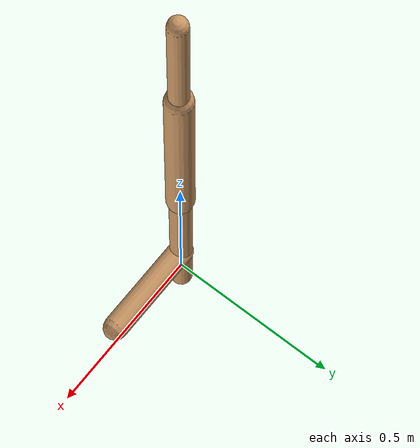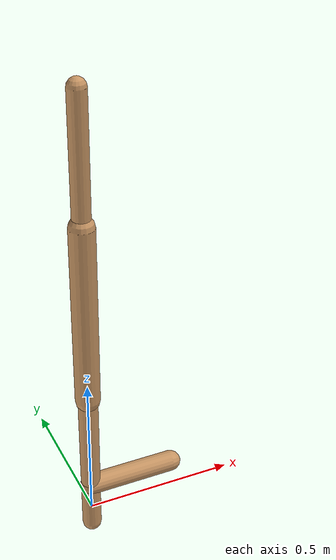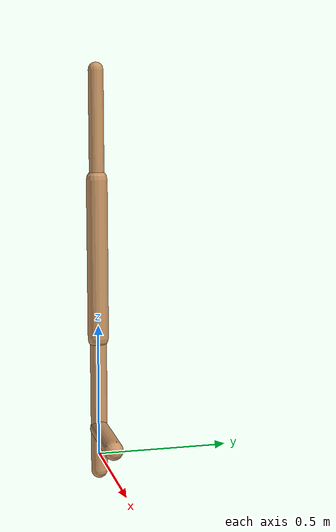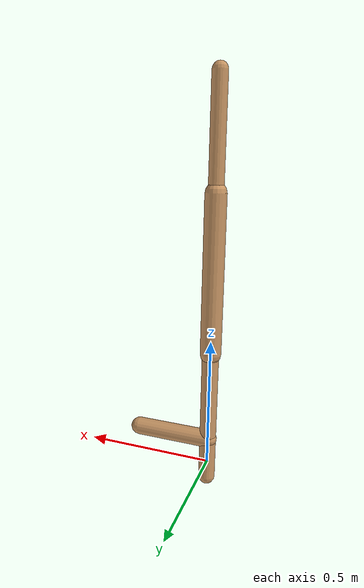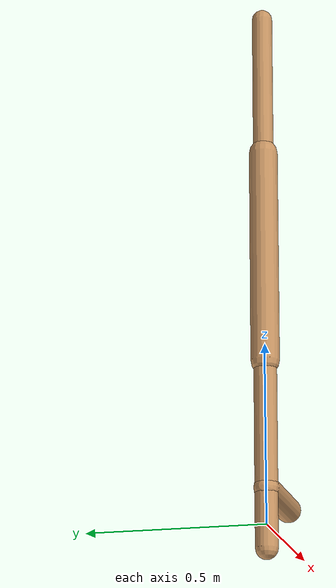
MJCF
<mujoco model="walker2d">
  <compiler angle="degree" coordinate="global" inertiafromgeom="true" />
  <default>
    <joint armature="0.01" damping=".1" limited="true" />
    <geom conaffinity="0" condim="3" contype="1" density="1000" friction="0.8 .1 .1" rgba="0.8 0.6 .4 1" />
  </default>
  <option integrator="RK4" timestep="0.002" />
  <worldbody>

    <body name="torso" pos="0 0 0.3110188992761192">
      <joint armature="0" axis="1 0 0" damping="0" limited="false" name="ignorex" pos="0 0 0" stiffness="0" type="slide" />
      <joint armature="0" axis="0 0 1" damping="0" limited="false" name="ignorez" pos="0 0 0" ref="1.25" stiffness="0" type="slide" />
      <joint armature="0" axis="0 1 0" damping="0" limited="false" name="ignorey" pos="0 0 0" stiffness="0" type="hinge" />
      <geom fromto="0 0 1.45 0 0 1.05" name="torso_geom" size="0.028043564710894028" type="capsule" />
      <body name="thigh">
        <joint axis="0 -1 0" name="thigh_joint" pos="0 0 1.05" range="-150 0" type="hinge" />
        <geom fromto="0.0 0.0 1.05 0.0 0.0 0.4526752582376277" name="thigh_geom" size="0.03945031215318437" type="capsule" />
        <body name="leg" pos="0.0 0.0 -0.14732474176237226">
          <joint axis="0 -1 0" name="leg_joint" pos="0 0 0.6" range="-150 0" type="hinge" />
          <geom fromto="0.0 0.0 0.6 0.0 0.0 -0.06369415751374694" name="leg_geom" size="0.03156024972254749" type="capsule" />
          <body name="foot" pos="0.0 0.0 -0.16369415751374694">
            <joint axis="0 -1 0" name="foot_joint" pos="0 0 0.1" range="-45 45" type="hinge" />
            <geom fromto="-0.0 0.0 0.09999999999999998 0.2867949883328766 0.0 0.09999999999999998" name="foot_geom" size="0.03471434249797357" type="capsule" />
          </body>
        </body>
      </body>

      <body name="thigh_left">
        <joint axis="0 -1 0" name="thigh_left_joint" pos="0 0 1.05" range="-150 0" type="hinge" />
        <geom fromto="0.0 0.0 1.05 0.0 0.0 0.4526752582376277" name="thigh_left_geom" rgba=".7 .3 .6 1" size="0.03945031215318437" type="capsule" />
        <body name="leg_left" pos="0.0 0.0 -0.14732474176237226">
          <joint axis="0 -1 0" name="leg_left_joint" pos="0 0 0.6" range="-150 0" type="hinge" />
          <geom fromto="0.0 0.0 0.6 0.0 0.0 -0.06369415751374694" name="leg_left_geom" rgba=".7 .3 .6 1" size="0.03156024972254749" type="capsule" />
          <body name="foot_left" pos="0.0 0.0 -0.16369415751374694">
            <joint axis="0 -1 0" name="foot_left_joint" pos="0 0 0.1" range="-45 45" type="hinge" />
            <geom fromto="-0.0 0.0 0.09999999999999998 0.2867949883328766 0.0 0.09999999999999998" name="foot_left_geom" rgba=".7 .3 .6 1" size="0.03471434249797357" type="capsule" />
          </body>
        </body>
      </body>
    </body>
  </worldbody>
  <actuator>

    <motor ctrllimited="true" ctrlrange="-1.0 1.0" gear="100" joint="thigh_joint" />
    <motor ctrllimited="true" ctrlrange="-1.0 1.0" gear="100" joint="leg_joint" />
    <motor ctrllimited="true" ctrlrange="-1.0 1.0" gear="100" joint="foot_joint" />
    <motor ctrllimited="true" ctrlrange="-1.0 1.0" gear="100" joint="thigh_left_joint" />
    <motor ctrllimited="true" ctrlrange="-1.0 1.0" gear="100" joint="leg_left_joint" />
    <motor ctrllimited="true" ctrlrange="-1.0 1.0" gear="100" joint="foot_left_joint" />

  </actuator>
</mujoco>
